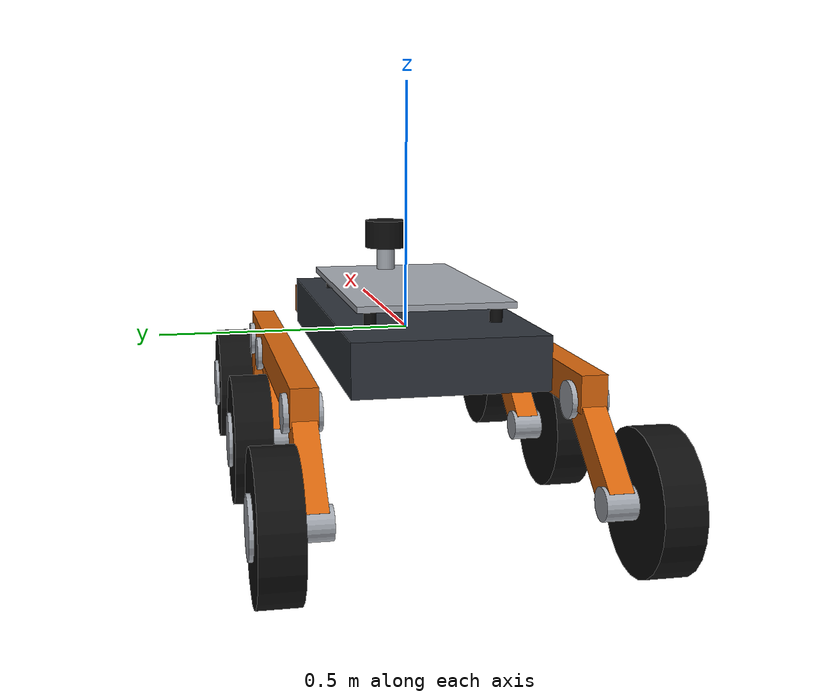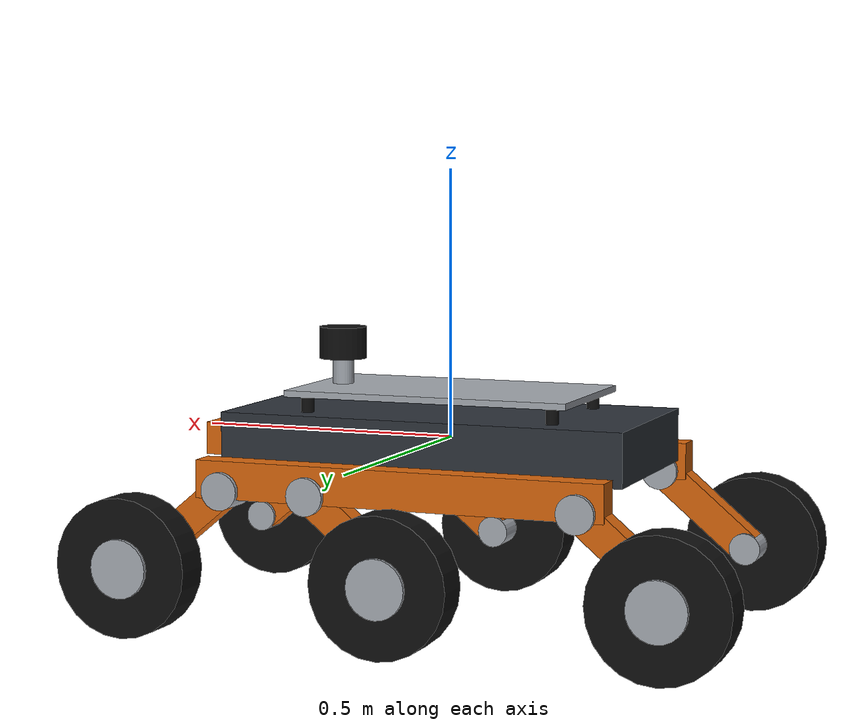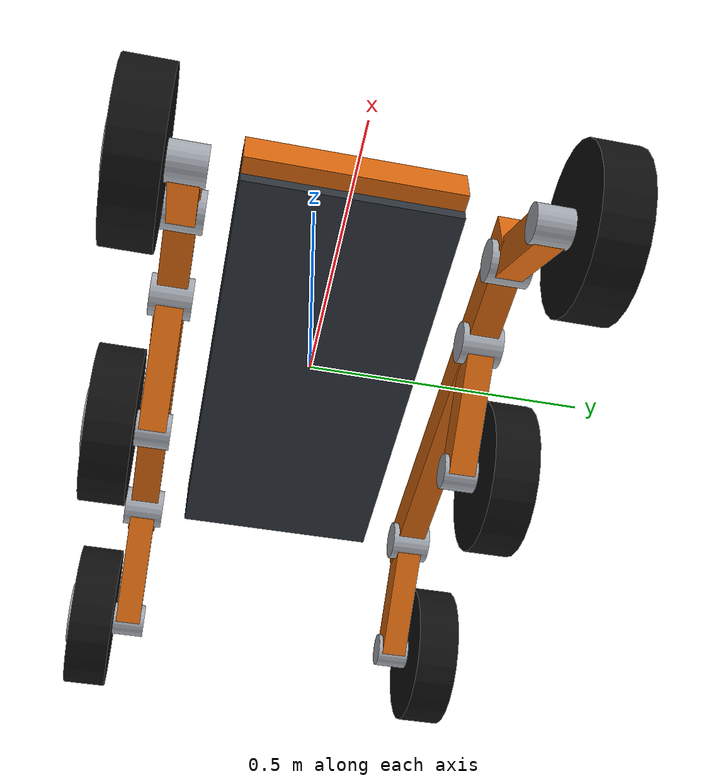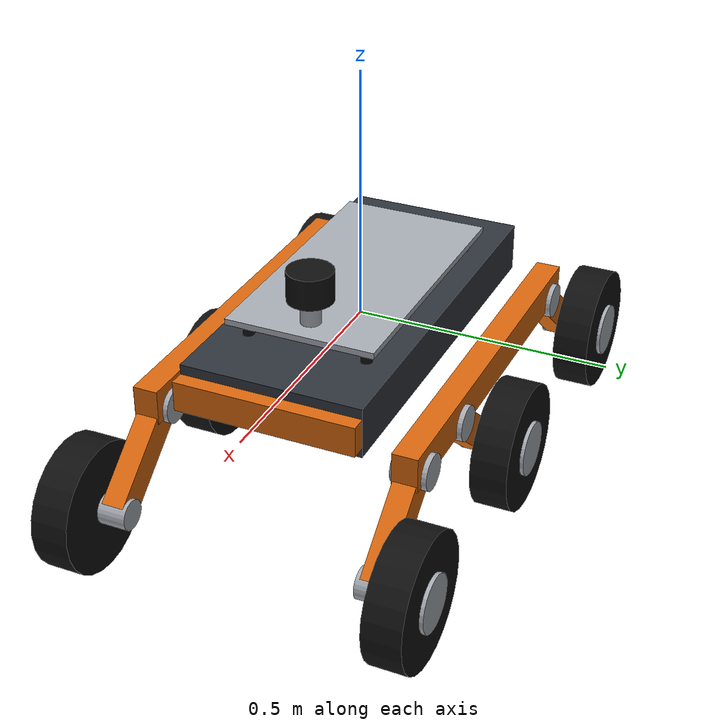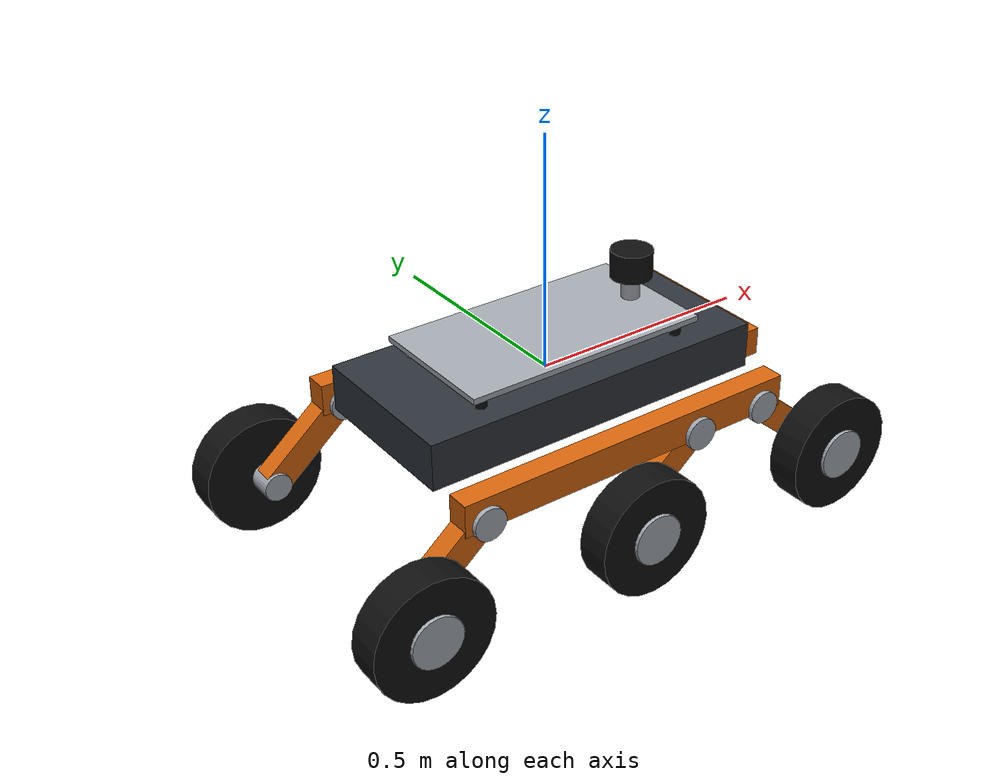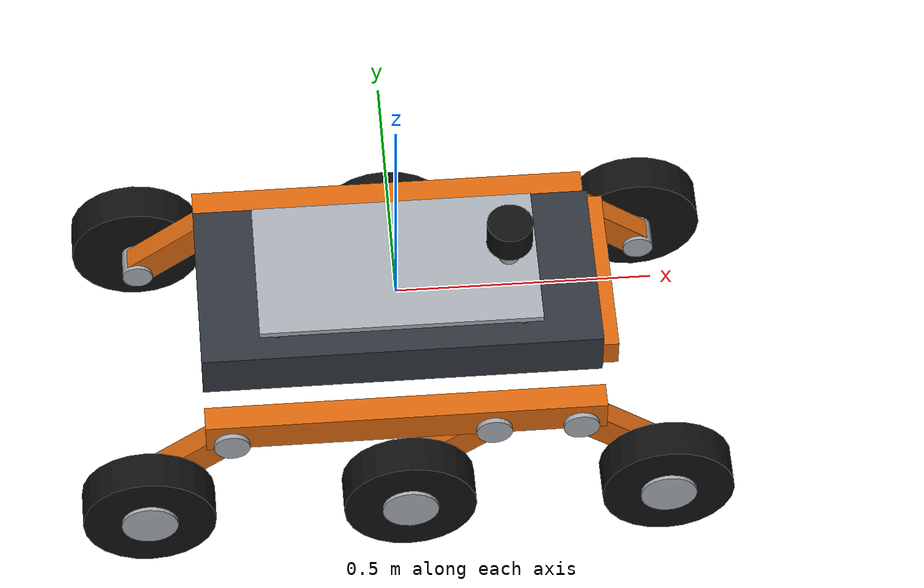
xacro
<?xml version="1.0"?>
<robot xmlns:xacro="http://www.ros.org/wiki/xacro" name="tarantula">

  <xacro:include filename="$(find tarantula_description)/urdf/tarantula_core.urdf.xacro"/>

  <!-- ============ 每腿 Gazebo 标签 ============ -->
  <xacro:macro name="leg_gazebo" params="prefix">

    <!-- 髋关节力/力矩传感器：child(摆臂)对parent(车身)的反作用力。
         只做诊断/系统辨识，不作为部署策略的必需接触真值。 -->
    <gazebo reference="susp_${prefix}_joint">
      <sensor name="ft_${prefix}" type="force_torque">
        <update_rate>50</update_rate>
        <topic>ft/${prefix}</topic>
        <force_torque>
          <frame>parent</frame>
          <measure_direction>child_to_parent</measure_direction>
        </force_torque>
      </sensor>
    </gazebo>

    <!-- 轮胎接触参数 -->
    <gazebo reference="wheel_${prefix}_link">
      <mu1>1.35</mu1>
      <mu2>1.05</mu2>
      <kp>1000000.0</kp>
      <kd>140.0</kd>
    </gazebo>

    <!-- 轮轴力/力矩传感器：部署可实现的轮载观测来源（轮毂/轮轴 F/T）。
         RL 不使用几何 contact boolean；轮载由 ||F|| 或法向力连续估计。 -->
    <gazebo reference="wheel_${prefix}_joint">
      <sensor name="ft_wheel_${prefix}" type="force_torque">
        <update_rate>50</update_rate>
        <topic>ft_wheel/${prefix}</topic>
        <force_torque>
          <frame>parent</frame>
          <measure_direction>child_to_parent</measure_direction>
        </force_torque>
      </sensor>
    </gazebo>
  </xacro:macro>

  <xacro:leg_gazebo prefix="fl"/>
  <xacro:leg_gazebo prefix="fr"/>
  <xacro:leg_gazebo prefix="ml"/>
  <xacro:leg_gazebo prefix="mr"/>
  <xacro:leg_gazebo prefix="rl"/>
  <xacro:leg_gazebo prefix="rr"/>

  <!-- ============ ros2_control ============ -->
  <ros2_control name="GazeboSimSystem" type="system">
    <hardware>
      <plugin>gz_ros2_control/GazeboSimSystem</plugin>
    </hardware>

    <xacro:macro name="susp_iface" params="prefix">
      <joint name="susp_${prefix}_joint">
        <command_interface name="effort"/>
        <state_interface name="position"/>
        <state_interface name="velocity"/>
        <state_interface name="effort"/>
      </joint>
    </xacro:macro>
    <xacro:macro name="wheel_iface" params="prefix">
      <joint name="wheel_${prefix}_joint">
        <command_interface name="velocity"/>
        <state_interface name="position"/>
        <state_interface name="velocity"/>
      </joint>
    </xacro:macro>

    <xacro:susp_iface prefix="fl"/>
    <xacro:susp_iface prefix="fr"/>
    <xacro:susp_iface prefix="ml"/>
    <xacro:susp_iface prefix="mr"/>
    <xacro:susp_iface prefix="rl"/>
    <xacro:susp_iface prefix="rr"/>

    <xacro:wheel_iface prefix="fl"/>
    <xacro:wheel_iface prefix="fr"/>
    <xacro:wheel_iface prefix="ml"/>
    <xacro:wheel_iface prefix="mr"/>
    <xacro:wheel_iface prefix="rl"/>
    <xacro:wheel_iface prefix="rr"/>
  </ros2_control>

  <!-- ============ Gazebo 插件 ============ -->
  <gazebo>
    <plugin filename="gz_ros2_control-system" name="gz_ros2_control::GazeboSimROS2ControlPlugin">
      <parameters>$(find tarantula_bringup)/config/controllers.yaml</parameters>
    </plugin>
  </gazebo>

  <gazebo reference="imu_link">
    <sensor name="imu_sensor" type="imu">
      <always_on>true</always_on>
      <update_rate>100</update_rate>
      <topic>imu</topic>
    </sensor>
  </gazebo>

  <gazebo reference="lidar_link">
    <sensor name="lidar_sensor" type="gpu_lidar">
      <always_on>true</always_on>
      <update_rate>10</update_rate>
      <topic>scan</topic>
      <ray>
        <scan>
          <horizontal>
            <samples>360</samples>
            <min_angle>${-PI}</min_angle>
            <max_angle>${PI}</max_angle>
          </horizontal>
        </scan>
        <range>
          <min>0.20</min>
          <max>12.0</max>
          <resolution>0.01</resolution>
        </range>
      </ray>
    </sensor>
  </gazebo>

</robot>

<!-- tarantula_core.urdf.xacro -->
<robot xmlns:xacro="http://www.ros.org/wiki/xacro" name="tarantula">

  <xacro:include filename="$(find tarantula_description)/urdf/tarantula_chassis.xacro"/>

  <xacro:arg name="wheel_collision" default="sphere"/>
  <xacro:tarantula_chassis prefix="" wheel_collision="$(arg wheel_collision)"/>

  <!-- ============ LiDAR 载荷（可选，挂 payload_mount） ============ -->
  <xacro:arg name="lidar" default="true"/>
  <xacro:if value="$(arg lidar)">
    <link name="lidar_link">
      <visual>
        <geometry><cylinder radius="0.045" length="0.06"/></geometry>
        <xacro:mat_tire/>
      </visual>
      <visual>  <!-- 支撑柱 -->
        <origin xyz="0 0 -0.06"/>
        <geometry><cylinder radius="0.02" length="0.06"/></geometry>
        <xacro:mat_hub/>
      </visual>
      <inertial>
        <mass value="0.2"/>
        <xacro:cylinder_inertia m="0.2" r="0.045" h="0.06"/>
      </inertial>
    </link>
    <joint name="lidar_joint" type="fixed">
      <parent link="payload_mount"/>
      <child link="lidar_link"/>
      <!-- 安装板顶面(0.092) + 0.078 = 0.17 -->
      <origin xyz="0.22 0 0.078"/>
    </joint>
  </xacro:if>

</robot>

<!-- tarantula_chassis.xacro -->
<robot xmlns:xacro="http://www.ros.org/wiki/xacro">

  <!-- ============ 几何参数（控制器的几何映射依赖 arm_length/arm_angle，
       修改时须同步 active_suspension 节点参数） ============ -->
  <xacro:property name="body_length"  value="0.78"/>
  <xacro:property name="body_width"   value="0.36"/>
  <xacro:property name="body_height"  value="0.10"/>
  <xacro:property name="body_mass"    value="18.0"/>
  <!-- COM 显式参数化，便于 Isaac/Gazebo 域随机化和载荷敏感性实验对齐。 -->
  <xacro:property name="body_com_x"   value="0.0"/>
  <xacro:property name="body_com_y"   value="0.0"/>
  <xacro:property name="body_com_z"   value="-0.025"/>
  <!-- 物理碰撞略小于视觉外壳，避免托底/擦边时用装饰外形参与接触。 -->
  <xacro:property name="belly_length" value="0.70"/>
  <xacro:property name="belly_width"  value="0.30"/>
  <xacro:property name="belly_height" value="0.08"/>
  <xacro:property name="belly_z"      value="0.015"/>

  <xacro:property name="arm_length"   value="0.22"/>   <!-- 悬挂摆臂长度 -->
  <xacro:property name="arm_mass"     value="0.8"/>
  <xacro:property name="arm_angle"    value="0.698"/>  <!-- 摆臂下倾 40 度 -->

  <xacro:property name="wheel_radius" value="0.13"/>
  <xacro:property name="wheel_width"  value="0.075"/>
  <xacro:property name="wheel_mass"   value="1.7"/>
  <!-- 轮胎视觉保持圆柱。碰撞体默认用 sphere；cylinder 仅保留为已知失败对照。 -->
  <xacro:property name="wheel_collision_radius" value="${wheel_radius}"/>

  <!-- 悬挂执行器等效 PD 参数。论文式 RL 部署不依赖 Gazebo-only joint spring，
       Gazebo/Isaac 都应通过受限执行器把目标角转换为力矩。 -->
  <xacro:property name="susp_actuator_kp" value="130.0"/> <!-- Nm/rad -->
  <xacro:property name="susp_damping"   value="11.0"/>  <!-- Nms/rad -->
  <xacro:property name="susp_friction"  value="0.08"/>

  <!-- 蜘蛛站姿：前腿朝前(dir=+1)、中后腿朝后(dir=-1)，六轮均布 x=+0.51/0/-0.51 -->
  <xacro:property name="pivot_x"      value="0.34"/>
  <xacro:property name="pivot_mx"     value="0.17"/>
  <xacro:property name="pivot_y"      value="0.26"/>
  <xacro:property name="pivot_z"      value="-0.08"/>

  <!-- 载荷安装板（模块化底盘的视觉/接口特征：平整安装面，非整车造型） -->
  <xacro:property name="deck_standoff" value="0.03"/>   <!-- 支撑柱高 -->
  <xacro:property name="deck_thick"    value="0.012"/>  <!-- 安装板厚 -->

  <xacro:property name="PI" value="3.14159265"/>

  <!-- ============ 惯量宏 ============ -->
  <xacro:macro name="box_inertia" params="m x y z">
    <inertia ixx="${m/12*(y*y+z*z)}" iyy="${m/12*(x*x+z*z)}" izz="${m/12*(x*x+y*y)}"
             ixy="0" ixz="0" iyz="0"/>
  </xacro:macro>
  <xacro:macro name="cylinder_inertia" params="m r h">
    <inertia ixx="${m/12*(3*r*r+h*h)}" iyy="${m/12*(3*r*r+h*h)}" izz="${m/2*r*r}"
             ixy="0" ixz="0" iyz="0"/>
  </xacro:macro>

  <!-- 安装板支撑柱（视觉件） -->
  <xacro:macro name="deck_post" params="x y">
    <visual>
      <origin xyz="${x} ${y} ${body_height/2 + deck_standoff/2}"/>
      <geometry><cylinder radius="0.012" length="${deck_standoff}"/></geometry>
      <xacro:mat_tire/>
    </visual>
  </xacro:macro>

  <!-- 内联材质宏：RViz2 对命名材质引用渲染不可靠，必须逐 visual 内联颜色 -->
  <xacro:macro name="mat_body"><material name="m_body"><color rgba="0.18 0.20 0.23 1"/></material></xacro:macro>
  <xacro:macro name="mat_accent"><material name="m_accent"><color rgba="0.85 0.40 0.05 1"/></material></xacro:macro>
  <xacro:macro name="mat_tire"><material name="m_tire"><color rgba="0.06 0.06 0.06 1"/></material></xacro:macro>
  <xacro:macro name="mat_hub"><material name="m_hub"><color rgba="0.65 0.67 0.70 1"/></material></xacro:macro>

  <!-- ============ 腿部宏（运动学/动力学本体，无仿真器标签） ============ -->
  <!-- id: fl/fr/ml/mr/rl/rr；side: 1=左/-1=右；dir: 1=摆臂朝前/-1=朝后。
       悬挂关节绕 y 轴，轮关节绕 y 轴连续转动。
       注意：dir 决定关节角与轮子升降的方向关系，控制节点 DIR 表必须一致。 -->
  <xacro:macro name="leg" params="prefix id x side dir wheel_collision">

    <joint name="${prefix}susp_${id}_joint" type="revolute">
      <parent link="${prefix}base_link"/>
      <child link="${prefix}arm_${id}_link"/>
      <origin xyz="${x} ${side*pivot_y} ${pivot_z}" rpy="0 0 0"/>
      <axis xyz="0 1 0"/>
      <limit lower="-0.6" upper="0.6" effort="75" velocity="6"/>
      <!-- 阻尼放物理侧（无控制延迟），软件 PD 的 kd 对延迟敏感不可依赖 -->
      <dynamics damping="${susp_damping}" friction="${susp_friction}"/>
    </joint>

    <link name="${prefix}arm_${id}_link">
      <visual>  <!-- 铰点关节座 -->
        <origin rpy="${PI/2} 0 0"/>
        <geometry><cylinder radius="0.035" length="0.07"/></geometry>
        <xacro:mat_hub/>
      </visual>
      <visual>  <!-- 摆臂主体 -->
        <origin xyz="${dir*arm_length/2*cos(arm_angle)} 0 ${-arm_length/2*sin(arm_angle)}"
                rpy="0 ${dir*arm_angle} 0"/>
        <geometry><box size="${arm_length} 0.045 0.06"/></geometry>
        <xacro:mat_accent/>
      </visual>
      <visual>  <!-- 轮端关节套 -->
        <origin xyz="${dir*arm_length*cos(arm_angle)} 0 ${-arm_length*sin(arm_angle)}"
                rpy="${PI/2} 0 0"/>
        <geometry><cylinder radius="0.03" length="0.06"/></geometry>
        <xacro:mat_hub/>
      </visual>
      <collision>
        <origin xyz="${dir*arm_length/2*cos(arm_angle)} 0 ${-arm_length/2*sin(arm_angle)}"
                rpy="0 ${dir*arm_angle} 0"/>
        <geometry><box size="${arm_length} 0.045 0.06"/></geometry>
      </collision>
      <inertial>
        <origin xyz="${dir*arm_length/2*cos(arm_angle)} 0 ${-arm_length/2*sin(arm_angle)}"/>
        <mass value="${arm_mass}"/>
        <xacro:box_inertia m="${arm_mass}" x="${arm_length}" y="0.045" z="0.06"/>
      </inertial>
    </link>

    <joint name="${prefix}wheel_${id}_joint" type="continuous">
      <parent link="${prefix}arm_${id}_link"/>
      <child link="${prefix}wheel_${id}_link"/>
      <origin xyz="${dir*arm_length*cos(arm_angle)} ${side*0.065} ${-arm_length*sin(arm_angle)}"/>
      <axis xyz="0 1 0"/>
      <limit effort="38" velocity="30"/>
      <dynamics damping="0.08"/>
    </joint>

    <link name="${prefix}wheel_${id}_link">
      <visual>  <!-- 轮胎 -->
        <origin rpy="${PI/2} 0 0"/>
        <geometry><cylinder radius="${wheel_radius}" length="${wheel_width}"/></geometry>
        <xacro:mat_tire/>
      </visual>
      <visual>  <!-- 轮毂 -->
        <origin xyz="0 ${side*0.005} 0" rpy="${PI/2} 0 0"/>
        <geometry><cylinder radius="0.055" length="${wheel_width + 0.005}"/></geometry>
        <xacro:mat_hub/>
      </visual>
      <xacro:if value="${wheel_collision == 'sphere'}">
        <collision name="wheel_${id}_contact_collision">
          <geometry><sphere radius="${wheel_collision_radius}"/></geometry>
        </collision>
      </xacro:if>
      <xacro:if value="${wheel_collision == 'cylinder'}">
        <collision name="wheel_${id}_contact_collision">
          <origin rpy="${PI/2} 0 0"/>
          <geometry><cylinder radius="${wheel_radius}" length="${wheel_width}"/></geometry>
        </collision>
      </xacro:if>
      <inertial>
        <origin rpy="${PI/2} 0 0"/>
        <mass value="${wheel_mass}"/>
        <xacro:cylinder_inertia m="${wheel_mass}" r="${wheel_radius}" h="${wheel_width}"/>
      </inertial>
    </link>
  </xacro:macro>

  <!-- ============ 底盘模块宏 ============ -->
  <xacro:macro name="tarantula_chassis" params="prefix:='' wheel_collision:='sphere'">

    <!-- 车身：主舱 + 载荷安装板（支撑柱架高的平整安装面）+ 两侧悬挂安装梁
         + 前保险杠（方向标识）。视觉语言对标 Husky/Scout 类模块化底盘：
         无整车造型，顶面就是给上装用的接口。只改 visual 不碰 collision。 -->
    <link name="${prefix}base_link">
      <visual>  <!-- 主舱 -->
        <geometry><box size="${body_length} ${body_width} ${body_height}"/></geometry>
        <xacro:mat_body/>
      </visual>
      <visual>  <!-- 载荷安装板 -->
        <origin xyz="0 0 ${body_height/2 + deck_standoff + deck_thick/2}"/>
        <geometry><box size="0.55 0.30 ${deck_thick}"/></geometry>
        <xacro:mat_hub/>
      </visual>
      <xacro:deck_post x="0.24"  y="0.12"/>
      <xacro:deck_post x="0.24"  y="-0.12"/>
      <xacro:deck_post x="-0.24" y="0.12"/>
      <xacro:deck_post x="-0.24" y="-0.12"/>
      <visual>  <!-- 前保险杠 -->
        <origin xyz="${body_length/2 + 0.015} 0 0"/>
        <geometry><box size="0.03 ${body_width} 0.06"/></geometry>
        <xacro:mat_accent/>
      </visual>
      <visual>  <!-- 左侧悬挂安装梁 -->
        <origin xyz="0 ${pivot_y} ${pivot_z + 0.02}"/>
        <geometry><box size="${body_length} 0.05 0.07"/></geometry>
        <xacro:mat_accent/>
      </visual>
      <visual>  <!-- 右侧悬挂安装梁 -->
        <origin xyz="0 ${-pivot_y} ${pivot_z + 0.02}"/>
        <geometry><box size="${body_length} 0.05 0.07"/></geometry>
        <xacro:mat_accent/>
      </visual>
      <collision name="base_belly_collision">
        <origin xyz="0 0 ${belly_z}"/>
        <geometry><box size="${belly_length} ${belly_width} ${belly_height}"/></geometry>
      </collision>
      <inertial>
        <origin xyz="${body_com_x} ${body_com_y} ${body_com_z}"/>
        <mass value="${body_mass}"/>
        <xacro:box_inertia m="${body_mass}" x="${body_length}" y="${body_width}" z="${body_height}"/>
      </inertial>
    </link>

    <!-- IMU：底盘固有传感器（调平控制的反馈源，随模块走） -->
    <link name="${prefix}imu_link">
      <inertial>
        <mass value="0.05"/>
        <xacro:box_inertia m="0.05" x="0.03" y="0.03" z="0.01"/>
      </inertial>
    </link>
    <joint name="${prefix}imu_joint" type="fixed">
      <parent link="${prefix}base_link"/>
      <child link="${prefix}imu_link"/>
      <origin xyz="0 0 ${body_height/2}"/>
    </joint>

    <!-- 载荷安装位：安装板顶面中心，外部载荷（LiDAR/相机/上装）统一挂这里，
         底盘模块本身不预设任何载荷 -->
    <link name="${prefix}payload_mount"/>
    <joint name="${prefix}payload_mount_joint" type="fixed">
      <parent link="${prefix}base_link"/>
      <child link="${prefix}payload_mount"/>
      <origin xyz="0 0 ${body_height/2 + deck_standoff + deck_thick}"/>
    </joint>

    <!-- 六条腿 -->
    <xacro:leg prefix="${prefix}" id="fl" x="${pivot_x}"  side="1"  dir="1"  wheel_collision="${wheel_collision}"/>
    <xacro:leg prefix="${prefix}" id="fr" x="${pivot_x}"  side="-1" dir="1"  wheel_collision="${wheel_collision}"/>
    <xacro:leg prefix="${prefix}" id="ml" x="${pivot_mx}" side="1"  dir="-1" wheel_collision="${wheel_collision}"/>
    <xacro:leg prefix="${prefix}" id="mr" x="${pivot_mx}" side="-1" dir="-1" wheel_collision="${wheel_collision}"/>
    <xacro:leg prefix="${prefix}" id="rl" x="${-pivot_x}" side="1"  dir="-1" wheel_collision="${wheel_collision}"/>
    <xacro:leg prefix="${prefix}" id="rr" x="${-pivot_x}" side="-1" dir="-1" wheel_collision="${wheel_collision}"/>
  </xacro:macro>

</robot>
